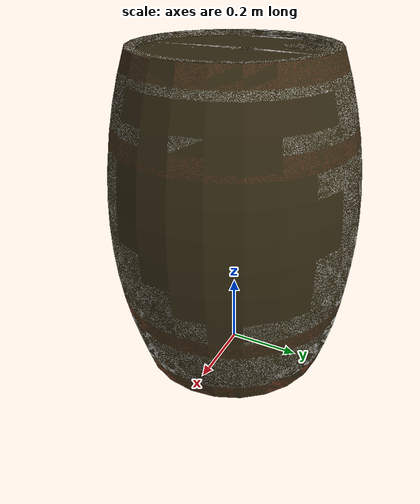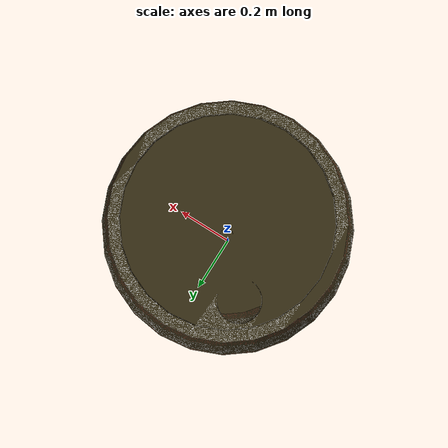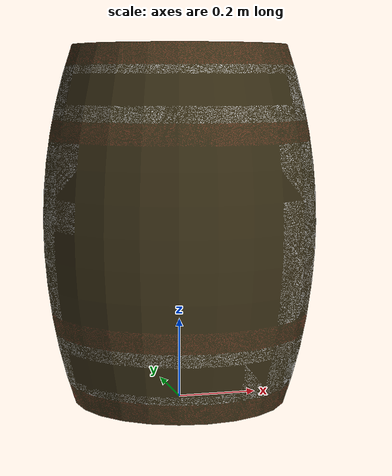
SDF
<?xml version="1.0" ?>
<sdf version="1.5">
  <model name="barrel">
    <static>true</static>
    <link name="barrel_link">
        <collision name="barrel_collision">
         <geometry>
            <mesh>
              <uri>model://barrel/meshes/model.dae</uri>
            </mesh>
            <origin xyz="0 0 0" rpy="0 0 0"/>
        </geometry>
      </collision>

      <visual name="barrel_mesh">
        <cast_shadows>true</cast_shadows>
        <geometry>
            <mesh>
                <uri>model://barrel/meshes/model.dae</uri>
            </mesh>
        </geometry>
      </visual>
    </link>
  </model>
</sdf>
